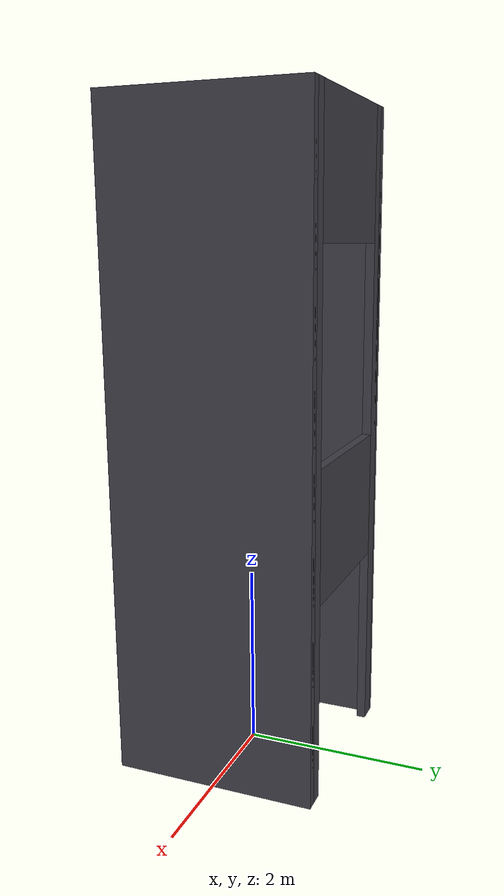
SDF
<?xml version="1.0" ?>
<sdf version="1.6">
  <model name="lift_shaft">
    <static>true</static>
    <link name="link">
      <pose>0 0 0 0 0 0</pose>
      <!-- Left Wall (Solid) -->
      <collision name="left_wall_collision">
        <pose>-1.05 0 3.5 0 0 0</pose>
        <geometry><box><size>0.1 2.2 7.0</size></box></geometry>
      </collision>
      <visual name="left_wall_visual">
        <pose>-1.05 0 3.5 0 0 0</pose>
        <geometry><box><size>0.1 2.2 7.0</size></box></geometry>
        <material>
          <ambient>0.25 0.25 0.28 1</ambient>
          <diffuse>0.25 0.25 0.28 1</diffuse>
          <specular>0.4 0.4 0.4 1</specular>
        </material>
      </visual>

      <!-- Right Wall (Solid) -->
      <collision name="right_wall_collision">
        <pose>1.05 0 3.5 0 0 0</pose>
        <geometry><box><size>0.1 2.2 7.0</size></box></geometry>
      </collision>
      <visual name="right_wall_visual">
        <pose>1.05 0 3.5 0 0 0</pose>
        <geometry><box><size>0.1 2.2 7.0</size></box></geometry>
        <material>
          <ambient>0.25 0.25 0.28 1</ambient>
          <diffuse>0.25 0.25 0.28 1</diffuse>
          <specular>0.4 0.4 0.4 1</specular>
        </material>
      </visual>

      <!-- Back Wall (Solid) -->
      <collision name="back_wall_collision">
        <pose>0 -1.05 3.5 0 0 0</pose>
        <geometry><box><size>2.0 0.1 7.0</size></box></geometry>
      </collision>
      <visual name="back_wall_visual">
        <pose>0 -1.05 3.5 0 0 0</pose>
        <geometry><box><size>2.0 0.1 7.0</size></box></geometry>
        <material>
          <ambient>0.25 0.25 0.28 1</ambient>
          <diffuse>0.25 0.25 0.28 1</diffuse>
          <specular>0.4 0.4 0.4 1</specular>
        </material>
      </visual>

      <!-- Front Wall (with door openings) -->
      <!-- Left corner post -->
      <collision name="front_left_post_collision">
        <pose>-0.95 1.05 3.5 0 0 0</pose>
        <geometry><box><size>0.2 0.1 7.0</size></box></geometry>
      </collision>
      <visual name="front_left_post_visual">
        <pose>-0.95 1.05 3.5 0 0 0</pose>
        <geometry><box><size>0.2 0.1 7.0</size></box></geometry>
        <material>
          <ambient>0.25 0.25 0.28 1</ambient>
          <diffuse>0.25 0.25 0.28 1</diffuse>
        </material>
      </visual>

      <!-- Right corner post -->
      <collision name="front_right_post_collision">
        <pose>0.95 1.05 3.5 0 0 0</pose>
        <geometry><box><size>0.2 0.1 7.0</size></box></geometry>
      </collision>
      <visual name="front_right_post_visual">
        <pose>0.95 1.05 3.5 0 0 0</pose>
        <geometry><box><size>0.2 0.1 7.0</size></box></geometry>
        <material>
          <ambient>0.25 0.25 0.28 1</ambient>
          <diffuse>0.25 0.25 0.28 1</diffuse>
        </material>
      </visual>

      <!-- Middle beam (separating ground floor and first floor openings) -->
      <collision name="front_mid_beam_collision">
        <pose>0 1.05 2.8 0 0 0</pose>
        <geometry><box><size>1.7 0.1 1.4</size></box></geometry>
      </collision>
      <visual name="front_mid_beam_visual">
        <pose>0 1.05 2.8 0 0 0</pose>
        <geometry><box><size>1.7 0.1 1.4</size></box></geometry>
        <material>
          <ambient>0.25 0.25 0.28 1</ambient>
          <diffuse>0.25 0.25 0.28 1</diffuse>
        </material>
      </visual>

      <!-- Top beam (above first floor opening) -->
      <collision name="front_top_beam_collision">
        <pose>0 1.05 6.3 0 0 0</pose>
        <geometry><box><size>1.7 0.1 1.4</size></box></geometry>
      </collision>
      <visual name="front_top_beam_visual">
        <pose>0 1.05 6.3 0 0 0</pose>
        <geometry><box><size>1.7 0.1 1.4</size></box></geometry>
        <material>
          <ambient>0.25 0.25 0.28 1</ambient>
          <diffuse>0.25 0.25 0.28 1</diffuse>
        </material>
      </visual>
    </link>
  </model>
</sdf>
